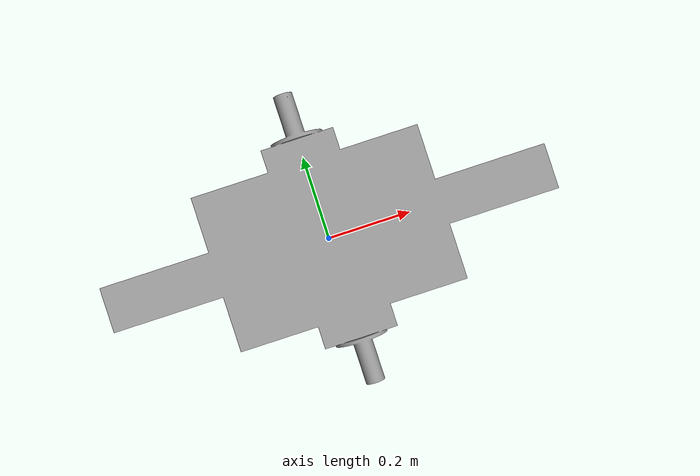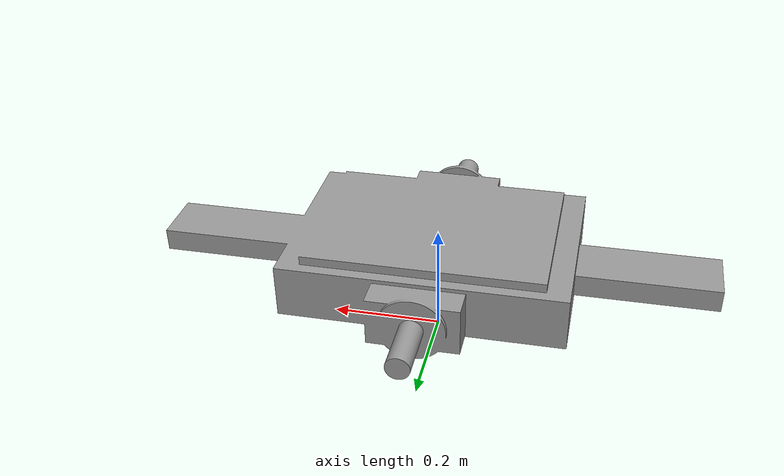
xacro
<?xml version="1.0"?>
<robot xmlns:xacro="http://www.ros.org/wiki/xacro">

  <!-- ===================================================================
       CAD -> ROS AXIS REMAP
       =================================================================== -->
  <xacro:property name="cad_yaw" value="${-pi/2}"/>

  <!-- Chassis (base_link), CAD bbox: 0.65 x 1.00 x 0.124 m, bottom face
       at CAD_Z = 0.097 -->
  <xacro:property name="base_length" value="1.00"/>           <!-- ROS X (= CAD Y) [m] -->
  <xacro:property name="base_width" value="0.65"/>             <!-- ROS Y (= CAD X) [m] -->
  <xacro:property name="base_height" value="0.124"/>           <!-- ROS Z (= CAD Z) [m] -->
  <xacro:property name="base_bottom_z" value="0.097"/>         <!-- CAD_Z of base bottom face [m] -->
  <xacro:property name="base_com_z" value="0.16215671974457993"/> <!-- from Fusion, relative to base_link origin -->
  <xacro:property name="base_mass" value="59.345373525167496"/>  <!-- [kg], aluminum-scaled -->
  <!-- After -90 deg about Z: ROS_Ixx = CAD_Iyy, ROS_Iyy = CAD_Ixx, ROS_Izz = CAD_Izz
       (already aluminum-scaled) -->
  <xacro:property name="base_ixx" value="0.7383072611464968"/>
  <xacro:property name="base_iyy" value="1.8362699999999998"/>
  <xacro:property name="base_izz" value="2.4707211592356684"/>

  <!-- Drive wheels, CAD bbox: dia ~0.3048 m (~152.4 mm radius), width 0.08 m,
       centers at CAD_X = +-0.300, CAD_Z ~ 0.1524 -->
  <xacro:property name="wheel_radius" value="0.1524"/>         <!-- [m] (~6 in) -->
  <xacro:property name="wheel_width" value="0.08"/>
  <xacro:property name="wheel_separation" value="0.60"/>       <!-- center-to-center [m] -->
  <xacro:property name="wheel_mass" value="6.637983487286445"/>  <!-- [kg], rubber-scaled (each wheel) -->
  <!-- After -90 deg about Z: ROS_Ixx = CAD_Iyy, ROS_Iyy = CAD_Ixx (axial), ROS_Izz = CAD_Izz
       (already rubber-scaled). Sanity check: 0.5*m*r^2 = 0.0771, matches iyy. -->
  <xacro:property name="wheel_ixx" value="0.04316667515923567"/>
  <xacro:property name="wheel_iyy" value="0.07991526114649682"/>          <!-- about wheel rotation axis (Y) -->
  <xacro:property name="wheel_izz" value="0.04340789808917197"/>

  <!-- Casters, CAD bbox of the caster wheel: dia 0.09 m (45 mm radius),
       caster groups centered at CAD_Y = +-0.450 -->
  <xacro:property name="caster_radius" value="0.045"/>
  <xacro:property name="caster_x_offset" value="0.45"/>        <!-- ROS X offset from base center [m] -->
  <!-- Estimated from bbox volumes: ~0.40 kg aluminum fork (~30% solid
       fraction @ 2700 kg/m^3) + ~0.20 kg solid rubber wheel
       (@ 1200 kg/m^3) = ~0.6 kg combined. -->
  <xacro:property name="caster_mass" value="0.6"/>             <!-- [kg], estimated (aluminum fork + rubber wheel) -->

  <!-- Support frame, CAD bbox: 0.268 (X) x 0.348 (Y) x 0.283 (Z),
       bottom face at CAD_Z = 0.221 (= base_link top) -->
  <xacro:property name="support_frame_length" value="0.348"/>  <!-- ROS X (= CAD Y) [m] -->
  <xacro:property name="support_frame_width" value="0.268"/>   <!-- ROS Y (= CAD X) [m] -->
  <xacro:property name="support_frame_height" value="0.283"/>  <!-- ROS Z (= CAD Z) [m] -->
  <!-- Estimated from bbox volume (0.0264 m^3) at ~5% solid fraction
       (open frame, not a solid block) @ 2700 kg/m^3 (aluminum). -->
  <xacro:property name="support_frame_mass" value="3.5"/>      <!-- [kg], estimated (aluminum) -->

  <!-- Pelvis mount plate, CAD bbox: 0.285 (X) x 0.225 (Y) x 0.152 (Z),
       bottom face at CAD_Z = 0.504 (= support_frame top) -->
  <xacro:property name="pelvis_length" value="0.225"/>         <!-- ROS X (= CAD Y) [m] -->
  <xacro:property name="pelvis_width" value="0.285"/>          <!-- ROS Y (= CAD X) [m] -->
  <xacro:property name="pelvis_height" value="0.152"/>         <!-- ROS Z (= CAD Z) [m] -->
  <!-- Estimated from bbox volume (0.00976 m^3) at ~11% solid fraction
       @ 2700 kg/m^3 (aluminum). -->
  <xacro:property name="pelvis_mass" value="3.0"/>             <!-- [kg], estimated (aluminum) -->

  <!-- ===================================================================
       INERTIA HELPER MACROS
       =================================================================== -->

  <!-- Solid box inertia about its own center of mass -->
  <xacro:macro name="box_inertial" params="mass x y z *origin">
    <inertial>
      <xacro:insert_block name="origin"/>
      <mass value="${mass}"/>
      <inertia
        ixx="${(1.0/12.0) * mass * (y*y + z*z)}" ixy="0.0" ixz="0.0"
        iyy="${(1.0/12.0) * mass * (x*x + z*z)}" iyz="0.0"
        izz="${(1.0/12.0) * mass * (x*x + y*y)}"/>
    </inertial>
  </xacro:macro>

  <!-- Solid cylinder inertia about its own center of mass.
       Cylinder axis assumed along the link's local Y axis (matches the
       wheel mounting convention used in wheels.xacro: axis = (0 1 0)). -->
  <xacro:macro name="cylinder_inertial_y" params="mass r h *origin">
    <inertial>
      <xacro:insert_block name="origin"/>
      <mass value="${mass}"/>
      <inertia
        ixx="${(1.0/12.0) * mass * (3*r*r + h*h)}" ixy="0.0" ixz="0.0"
        iyy="${0.5 * mass * r*r}" iyz="0.0"
        izz="${(1.0/12.0) * mass * (3*r*r + h*h)}"/>
    </inertial>
  </xacro:macro>

  <!-- Solid sphere inertia about its own center of mass -->
  <xacro:macro name="sphere_inertial" params="mass r *origin">
    <inertial>
      <xacro:insert_block name="origin"/>
      <mass value="${mass}"/>
      <inertia
        ixx="${(2.0/5.0) * mass * r*r}" ixy="0.0" ixz="0.0"
        iyy="${(2.0/5.0) * mass * r*r}" iyz="0.0"
        izz="${(2.0/5.0) * mass * r*r}"/>
    </inertial>
  </xacro:macro>

  <link name="base_link">
    <visual>
      <origin xyz="0 0 0" rpy="0 0 ${cad_yaw}"/>
      <geometry>
        <mesh filename="package://robot_base_simulation/meshes/base_link.stl" scale="0.001 0.001 0.001"/>
      </geometry>
      <material name="zeko_chassis_grey"/>
    </visual>

    <collision>
      <!-- Simplified box collision, sized to the chassis envelope -->
      <origin xyz="0 0 ${base_bottom_z + base_height/2.0}" rpy="0 0 0"/>
      <geometry>
        <box size="${base_length} ${base_width} ${base_height}"/>
      </geometry>
    </collision>

    <inertial>
      <origin xyz="0 0 ${base_com_z}" rpy="0 0 0"/>
      <mass value="${base_mass}"/>
      <inertia ixx="${base_ixx}" ixy="0.0" ixz="0.0"
               iyy="${base_iyy}" iyz="0.0"
               izz="${base_izz}"/>
    </inertial>
  </link>

</robot>
